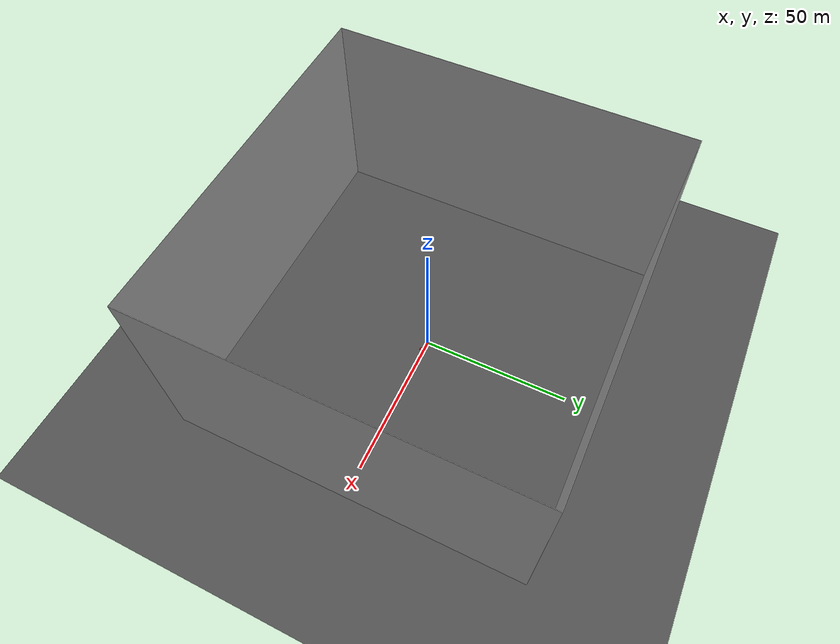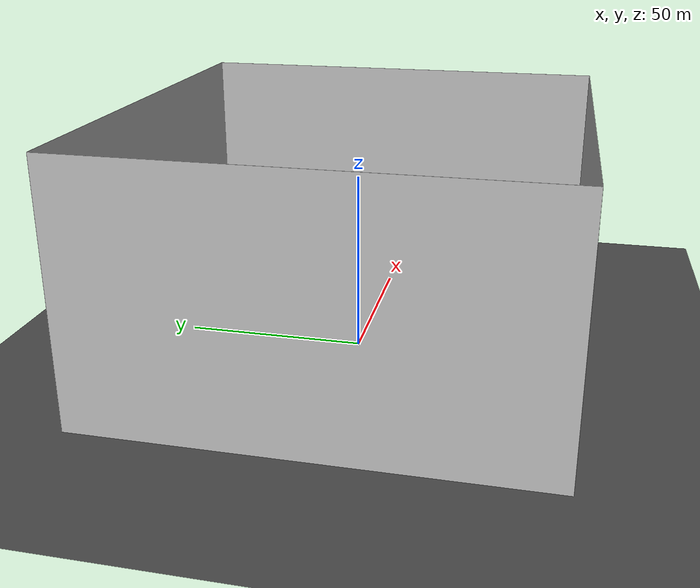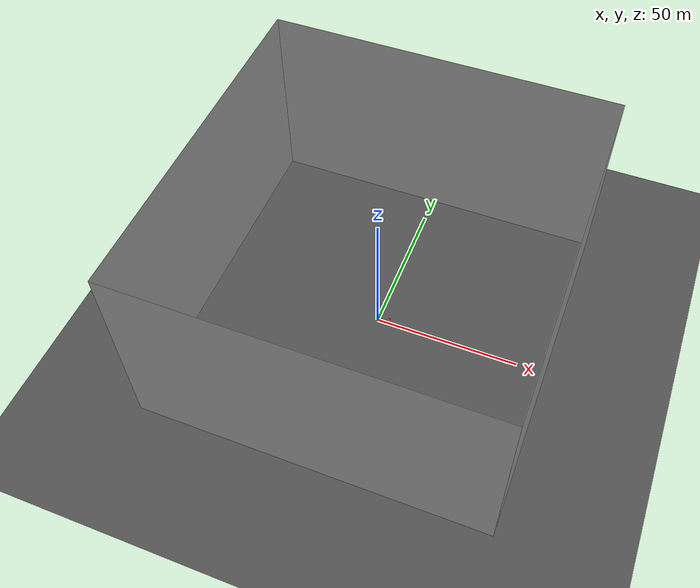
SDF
<sdf version="1.6">
 <world name="real_track">
  <plugin name="ros_interface_plugin" filename="librotors_gazebo_ros_interface_plugin.so"/>
  <physics type="ode">
   <max_step_size>0.001</max_step_size>
   <real_time_update_rate>1000</real_time_update_rate>
  </physics>
  <include><uri>model://sun</uri></include>
  <model name="ground_plane">
   <static>true</static>
   <link name="link">
    <collision name="collision">
     <geometry><plane><normal>0 0 1</normal><size>120 120</size></plane></geometry>
     <surface><friction><ode><mu>100</mu><mu2>50</mu2></ode></friction></surface>
    </collision>
    <visual name="visual">
     <cast_shadows>false</cast_shadows>
     <geometry><plane><normal>0 0 1</normal><size>120 120</size></plane></geometry>
     <material>
      <script>
       <uri>model://race_track/iros_materials/materials/scripts/asphalt.material</uri>
       <uri>model://race_track/iros_materials/materials/textures</uri>
       <name>iros/asphalt</name>
      </script>
     </material>
    </visual>
   </link>
  </model>
  <model name="wall_1">
   <pose>-60.0 0.0 34.0 0 0 0</pose>
   <static>true</static>
   <link name="link">
    <inertial><mass>1.0</mass></inertial>
    <collision name="collision"><geometry><box><size>0.1 120.0 70.0</size></box></geometry></collision>
    <visual name="visual">
     <geometry><box><size>0.1 120.0 70.0</size></box></geometry>
     <material>
      <script>
       <uri>model://race_track/iros_materials/materials/scripts/wall_1.material</uri>
       <uri>model://race_track/iros_materials/materials/textures</uri>
       <name>iros/wall_1</name>
      </script>
     </material>
    </visual>
   </link>
  </model>
  <model name="wall_2">
   <pose>0.0 -60.0 34.0 0 0 0</pose>
   <static>true</static>
   <link name="link">
    <inertial><mass>1.0</mass></inertial>
    <collision name="collision"><geometry><box><size>120 0.1 70.0</size></box></geometry></collision>
    <visual name="visual">
     <geometry><box><size>120 0.1 70.0</size></box></geometry>
     <material>
      <script>
       <uri>model://race_track/iros_materials/materials/scripts/wall_2.material</uri>
       <uri>model://race_track/iros_materials/materials/textures</uri>
       <name>iros/wall_2</name>
      </script>
     </material>
    </visual>
   </link>
  </model>
  <model name="wall_3">
   <pose>60.0 0.0 34.0 0 0 0</pose>
   <static>true</static>
   <link name="link">
    <inertial><mass>1.0</mass></inertial>
    <collision name="collision"><geometry><box><size>0.1 120.0 70.0</size></box></geometry></collision>
    <visual name="visual">
     <geometry><box><size>0.1 120.0 70.0</size></box></geometry>
     <material>
      <script>
       <uri>model://race_track/iros_materials/materials/scripts/wall_3.material</uri>
       <uri>model://race_track/iros_materials/materials/textures</uri>
       <name>iros/wall_3</name>
      </script>
     </material>
    </visual>
   </link>
  </model>
  <model name="wall_4">
   <pose>0.0 60.0 34.0 0 0 0</pose>
   <static>true</static>
   <link name="link">
    <inertial><mass>1.0</mass></inertial>
    <collision name="collision"><geometry><box><size>120 0.1 70.0</size></box></geometry></collision>
    <visual name="visual">
     <geometry><box><size>120 0.1 70.0</size></box></geometry>
     <material>
      <script>
       <uri>model://race_track/iros_materials/materials/scripts/wall_4.material</uri>
       <uri>model://race_track/iros_materials/materials/textures</uri>
       <name>iros/wall_4</name>
      </script>
     </material>
    </visual>
   </link>
  </model>
  <model name="gate_1">
   <pose>4.0 0.0 1.0 0.0 0.0 0.0</pose>
   <static>true</static>
   <link name="gate_1_body">
    <collision name="gate_1_collision">
     <geometry><mesh><uri>model://race_track/real_world/gate/meshes/gate.dae</uri></mesh></geometry>
    </collision>
    <visual name="gate_1_visual">
     <geometry><mesh><uri>model://race_track/real_world/gate/meshes/gate.dae</uri></mesh></geometry>
     <material><script><name>Gazebo/Red</name></script></material>
    </visual>
   </link>
  </model>
 </world>
</sdf>
